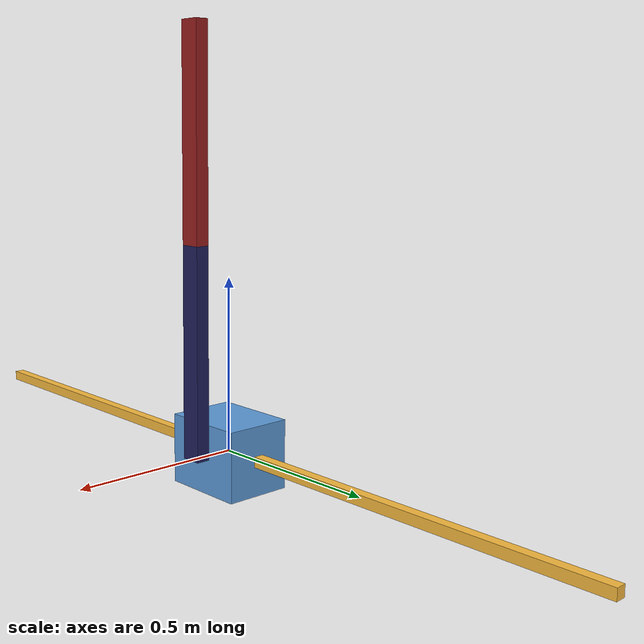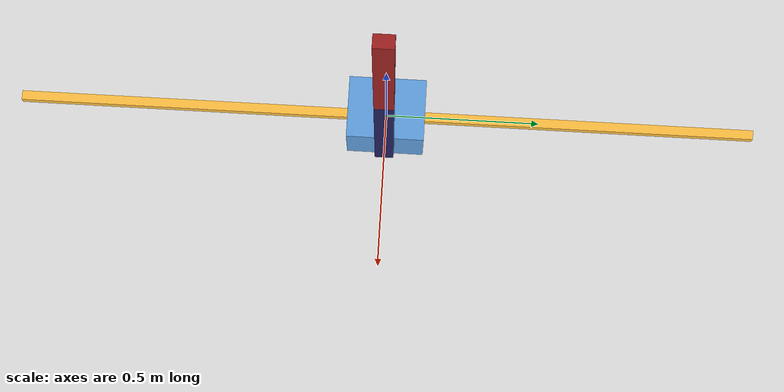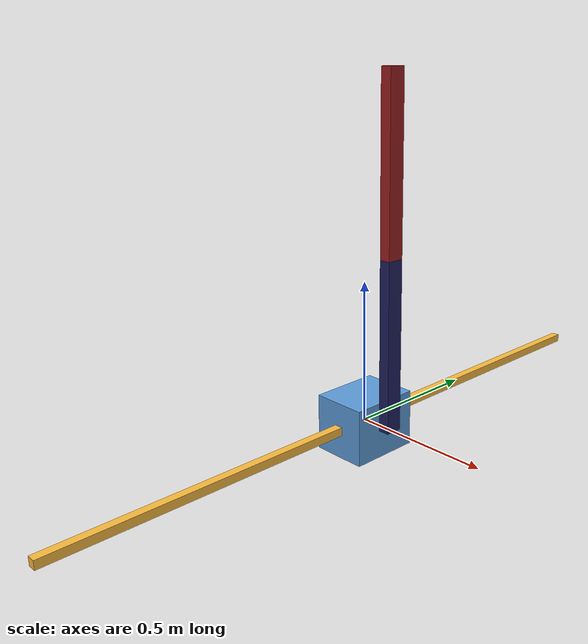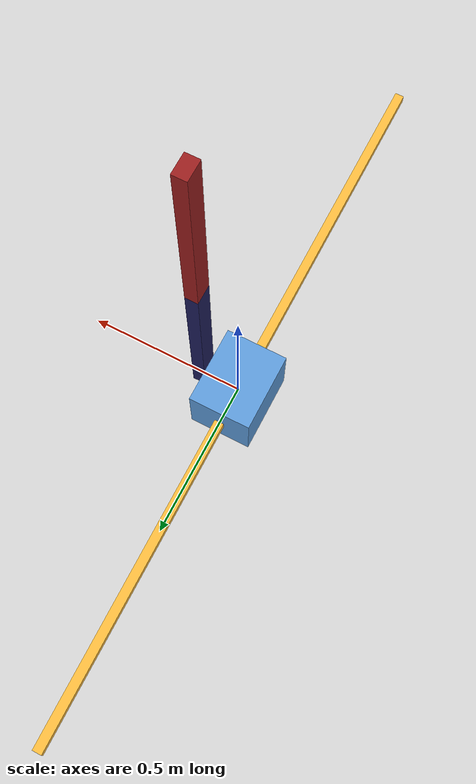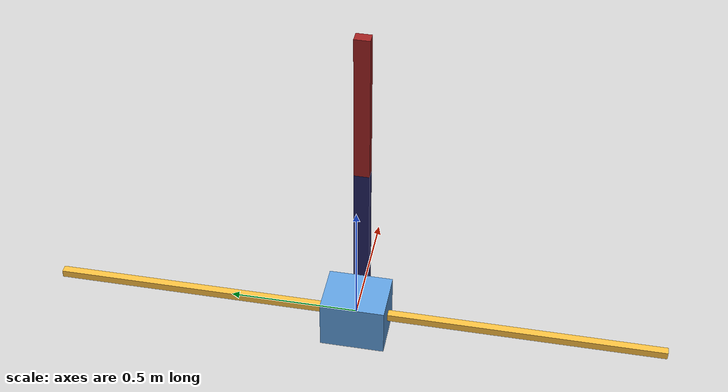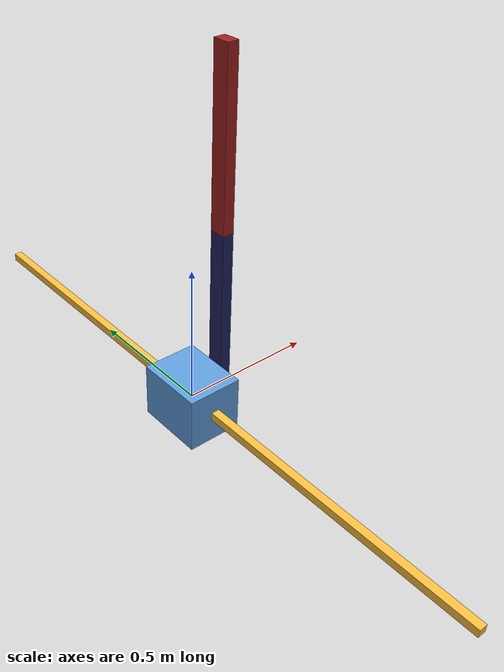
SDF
<?xml version="1.0"?>
<sdf version="1.8">
  <model name="inverted_double_pendulum_bare">
    <link name="slider">
      <inertial><mass>1</mass>
        <inertia><ixx>0.00854</ixx><iyy>0.00667</iyy><izz>0.00854</izz></inertia></inertial>
      <collision name="slider_collision">
        <geometry><box><size>0.03 2.4 0.03</size></box></geometry></collision>
      <visual name="slider_visual">
        <geometry><box><size>0.03 2.4 0.03</size></box></geometry>
        <material><ambient>1 0.75 0.25 1</ambient><diffuse>1 0.75 0.25 1</diffuse></material></visual>
    </link>

    <joint name="slider_to_cart" type="prismatic">
      <pose relative_to="slider">0 0 0 0 0 0</pose>
      <parent>slider</parent><child>cart</child>
      <axis><xyz>0 1 0</xyz><limit><lower>-1</lower><upper>1</upper></limit></axis>
    </joint>

    <link name="cart">
      <pose relative_to="slider_to_cart">0 0 0 0 0 0</pose>
      <inertial><mass>10.471981</mass>
        <inertia><ixx>0.0894</ixx><iyy>0.0698</iyy><izz>0.0894</izz></inertia></inertial>
      <collision name="cart_collision">
        <geometry><box><size>0.2 0.25 0.2</size></box></geometry></collision>
      <visual name="cart_visual">
        <geometry><box><size>0.2 0.25 0.2</size></box></geometry>
        <material><ambient>0.375 0.625 0.875 1</ambient><diffuse>0.375 0.625 0.875 1</diffuse></material></visual>
    </link>

    <joint name="cart_to_pole" type="revolute">
      <pose relative_to="cart">0.12 0 0 0 0 0</pose>
      <parent>cart</parent><child>pole</child>
      <axis><xyz>1 0 0</xyz></axis>
    </joint>

    <link name="pole">
      <pose relative_to="cart_to_pole">0 0 0 0 0 0</pose>
      <inertial><pose>0 0 0.3 0 0 0</pose><mass>4.198741</mass>
        <inertia><ixx>0.1259</ixx><iyy>0.1259</iyy><izz>0.0018</izz></inertia></inertial>
      <collision name="pole_collision">
        <pose>0 0 0.3 0 0 0</pose>
        <geometry><box><size>0.04 0.06 0.6</size></box></geometry></collision>
      <visual name="pole_visual">
        <pose>0 0 0.3 0 0 0</pose>
        <geometry><box><size>0.04 0.06 0.6</size></box></geometry>
        <material><ambient>0.125 0.125 0.375 1</ambient><diffuse>0.125 0.125 0.375 1</diffuse></material></visual>
    </link>

    <joint name="pole_to_pole2" type="revolute">
      <pose relative_to="pole">0 0 0.6 0 0 0</pose>
      <parent>pole</parent><child>pole2</child>
      <axis><xyz>1 0 0</xyz></axis>
    </joint>

    <link name="pole2">
      <pose relative_to="pole_to_pole2">0 0 0 0 0 0</pose>
      <inertial><pose>0 0 0.3 0 0 0</pose><mass>4.198741</mass>
        <inertia><ixx>0.1259</ixx><iyy>0.1259</iyy><izz>0.0018</izz></inertia></inertial>
      <collision name="pole2_collision">
        <pose>0 0 0.3 0 0 0</pose>
        <geometry><box><size>0.04 0.06 0.6</size></box></geometry></collision>
      <visual name="pole2_visual">
        <pose>0 0 0.3 0 0 0</pose>
        <geometry><box><size>0.04 0.06 0.6</size></box></geometry>
        <material><ambient>0.625 0.125 0.125 1</ambient><diffuse>0.625 0.125 0.125 1</diffuse></material></visual>
    </link>
  </model>
</sdf>
